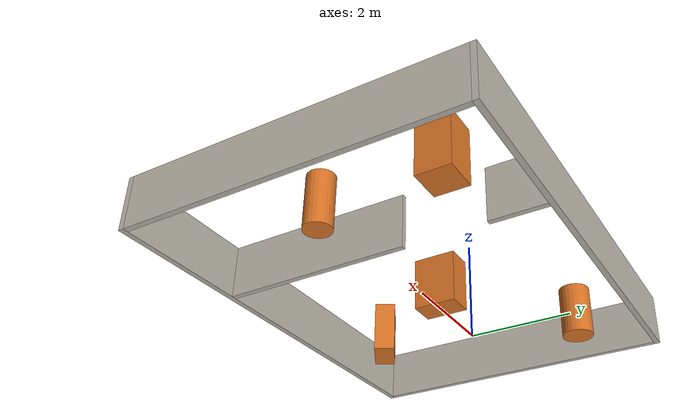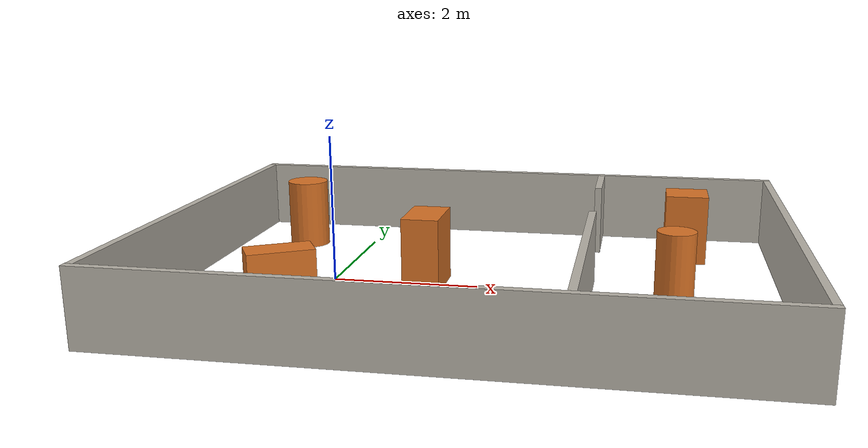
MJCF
<mujoco model="nav_test">
  <default>
    <geom type="box" contype="1" conaffinity="1" rgba="0.72 0.7 0.66 1"/>
    <default class="obstacle">
      <geom rgba="0.85 0.45 0.15 1"/>
    </default>
  </default>
  <worldbody>
    <body name="nav_test">
      <geom name="wall_south" pos="2 -3.05 0.5" size="4.1 0.05 0.5"/>
      <geom name="wall_north" pos="2 3.05 0.5" size="4.1 0.05 0.5"/>
      <geom name="wall_west" pos="-2.05 0 0.5" size="0.05 3 0.5"/>
      <geom name="wall_east" pos="6.05 0 0.5" size="0.05 3 0.5"/>
      <geom name="partition_south" pos="3.5 -1.25 0.5" size="0.05 1.75 0.5"/>
      <geom name="partition_north" pos="3.5 2.5 0.5" size="0.05 0.5 0.5"/>
      <geom name="box_front" class="obstacle" pos="1.3 0 0.5" size="0.25 0.4 0.5"/>
      <geom name="box_skewed" class="obstacle" pos="0 -2 0.5" size="0.4 0.2 0.5"
            quat="0.965926 0 0 0.258819"/>
      <geom name="pillar_west" class="obstacle" type="cylinder" pos="-1 1.8 0.5"
            size="0.3 0.5"/>
      <geom name="box_room2" class="obstacle" pos="4.8 1.9 0.5" size="0.3 0.3 0.5"/>
      <geom name="pillar_room2" class="obstacle" type="cylinder" pos="4.6 -0.4 0.5"
            size="0.25 0.5"/>
    </body>
  </worldbody>
</mujoco>
